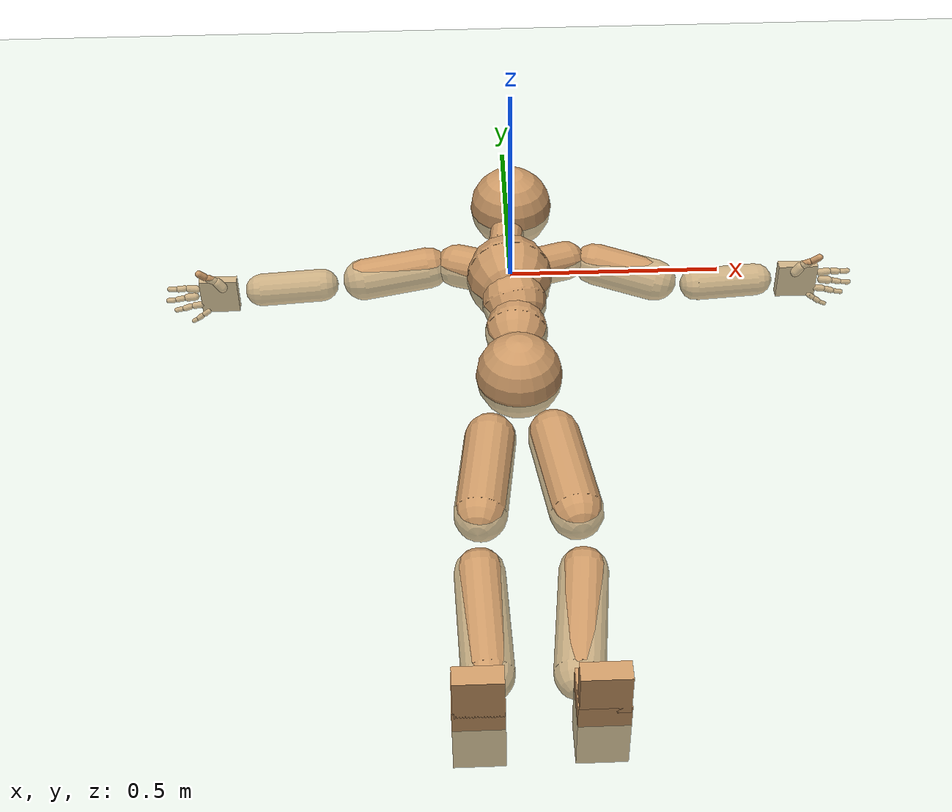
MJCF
<mujoco model="humanoid">
  <compiler coordinate="local"/>
  <default>
    <joint damping="0.0" armature="0.01" stiffness="0.0" limited="true"/>
    <geom conaffinity="1" condim="3" contype="7" margin="0.001" rgba="0.8 0.6 .4 1"/>
  </default>
  <asset>
    <texture type="skybox" builtin="gradient" rgb1=".4 .5 .6" rgb2="0 0 0" width="100" height="100"/>
    <texture builtin="flat" height="1278" mark="cross" markrgb="1 1 1" name="texgeom" random="0.01" rgb1="0.8 0.6 0.4" rgb2="0.8 0.6 0.4" type="cube" width="127"/>
    <texture builtin="checker" height="100" name="texplane" rgb1="0 0 0" rgb2="0.8 0.8 0.8" type="2d" width="100"/>
    <material name="MatPlane" reflectance="0.5" shininess="1" specular="1" texrepeat="60 60" texture="texplane"/>
    <material name="geom" texture="texgeom" texuniform="true"/>
  </asset>
  <worldbody>
    <light cutoff="100" diffuse="1 1 1" dir="-0 0 -1.3" directional="true" exponent="1" pos="0 0 1.3" specular=".1 .1 .1"/>
    <geom conaffinity="1" condim="3" name="floor" pos="0 0 0" rgba="0.8 0.9 0.8 1" size="100 100 .2" type="plane" material="MatPlane"/>
    <body name="Pelvis" pos="0.003 -0.3669 0.0052">
      <freejoint name="Pelvis"/>
      <geom type="sphere" contype="1" conaffinity="1" density="4629.6296296296305" size="0.0980" pos="0.0000 0.0000 0.0000" name="Pelvis"/>
      <body name="L_Hip" pos="0.0569 -0.094 -0.0248">
        <joint name="L_Hip_x" type="hinge" pos="0 0 0" axis="1 0 0" user="250 2.5 1 500 10 2" armature="0.01" range="-90.0000 90.0000" damping="0" stiffness="0"/>
        <joint name="L_Hip_y" type="hinge" pos="0 0 0" axis="0 1 0" user="250 2.5 1 500 10 2" armature="0.01" range="-90.0000 90.0000" damping="0" stiffness="0"/>
        <joint name="L_Hip_z" type="hinge" pos="0 0 0" axis="0 0 1" user="250 2.5 1 500 10 2" armature="0.01" range="-90.0000 90.0000" damping="0" stiffness="0"/>
        <geom type="capsule" contype="1" conaffinity="1" density="2040.816327" fromto="0.0112 -0.0747 -0.0017 0.0449 -0.2987 -0.0067" size="0.0578" name="L_Hip"/>
        <body name="L_Knee" pos="0.0561 -0.3734 -0.0084">
          <joint name="L_Knee_x" type="hinge" pos="0 0 0" axis="1 0 0" user="250 2.5 1 500 10 2" armature="0.01" range="-180.0000 180.0000" damping="0" stiffness="0"/>
          <joint name="L_Knee_y" type="hinge" pos="0 0 0" axis="0 1 0" user="250 2.5 1 500 10 2" armature="0.01" range="-5.6250 5.6250" damping="0" stiffness="0"/>
          <joint name="L_Knee_z" type="hinge" pos="0 0 0" axis="0 0 1" user="250 2.5 1 500 10 2" armature="0.01" range="-5.6250 5.6250" damping="0" stiffness="0"/>
          <geom type="capsule" contype="1" conaffinity="1" density="1234.567901" fromto="-0.0084 -0.0799 -0.0059 -0.0336 -0.3196 -0.0237" size="0.051" name="L_Knee"/>
          <body name="L_Ankle" pos="-0.042 -0.3995 -0.0296">
            <joint name="L_Ankle_x" type="hinge" pos="0 0 0" axis="1 0 0" user="150 2.5 1 500 10 2" armature="0.01" range="-90.0000 90.0000" damping="0" stiffness="0"/>
            <joint name="L_Ankle_y" type="hinge" pos="0 0 0" axis="0 1 0" user="150 2.5 1 500 10 2" armature="0.01" range="-90.0000 90.0000" damping="0" stiffness="0"/>
            <joint name="L_Ankle_z" type="hinge" pos="0 0 0" axis="0 0 1" user="150 2.5 1 500 10 2" armature="0.01" range="-90.0000 90.0000" damping="0" stiffness="0"/>
            <geom type="box" density="444.000502" pos="0.0404 -0.0291 0.0239" size="0.0495 0.0465 0.0848" quat="1.0000 0.0000 0.0000 0.0000" name="L_Ankle"/>
            <body name="L_Toe" pos="0.047 -0.0587 0.118">
              <joint name="L_Toe_x" type="hinge" pos="0 0 0" axis="1 0 0" user="150 1 1 500 1 1" armature="0.01" range="-90.0000 90.0000" damping="0" stiffness="0"/>
              <joint name="L_Toe_y" type="hinge" pos="0 0 0" axis="0 1 0" user="150 1 1 500 1 1" armature="0.01" range="-45.0000 45.0000" damping="0" stiffness="0"/>
              <joint name="L_Toe_z" type="hinge" pos="0 0 0" axis="0 0 1" user="150 1 1 500 1 1" armature="0.01" range="-45.0000 45.0000" damping="0" stiffness="0"/>
              <geom type="box" density="422.719813" pos="-0.0066 0.0035 0.0258" size="0.0476 0.0204 0.0496" quat="1.0000 0.0000 0.0000 0.0000" name="L_Toe"/>
            </body>
          </body>
        </body>
      </body>
      <body name="R_Hip" pos="-0.0618 -0.1053 -0.0203">
        <joint name="R_Hip_x" type="hinge" pos="0 0 0" axis="1 0 0" user="250 2.5 1 500 10 2" armature="0.01" range="-90.0000 90.0000" damping="0" stiffness="0"/>
        <joint name="R_Hip_y" type="hinge" pos="0 0 0" axis="0 1 0" user="250 2.5 1 500 10 2" armature="0.01" range="-90.0000 90.0000" damping="0" stiffness="0"/>
        <joint name="R_Hip_z" type="hinge" pos="0 0 0" axis="0 0 1" user="250 2.5 1 500 10 2" armature="0.01" range="-90.0000 90.0000" damping="0" stiffness="0"/>
        <geom type="capsule" contype="1" conaffinity="1" density="2040.816327" fromto="-0.0092 -0.0713 -0.0031 -0.0369 -0.2854 -0.0124" size="0.057" name="R_Hip"/>
        <body name="R_Knee" pos="-0.0461 -0.3567 -0.0155">
          <joint name="R_Knee_x" type="hinge" pos="0 0 0" axis="1 0 0" user="250 2.5 1 500 10 2" armature="0.01" range="-180.0000 180.0000" damping="0" stiffness="0"/>
          <joint name="R_Knee_y" type="hinge" pos="0 0 0" axis="0 1 0" user="250 2.5 1 500 10 2" armature="0.01" range="-5.6250 5.6250" damping="0" stiffness="0"/>
          <joint name="R_Knee_z" type="hinge" pos="0 0 0" axis="0 0 1" user="250 2.5 1 500 10 2" armature="0.01" range="-5.6250 5.6250" damping="0" stiffness="0"/>
          <geom type="capsule" contype="1" conaffinity="1" density="1234.567901" fromto="0.0030 -0.0815 -0.0036 0.0119 -0.3259 -0.0145" size="0.0526" name="R_Knee"/>
          <body name="R_Ankle" pos="0.0148 -0.4073 -0.0181">
            <joint name="R_Ankle_x" type="hinge" pos="0 0 0" axis="1 0 0" user="150 1 1 500 10 2" armature="0.01" range="-90.0000 90.0000" damping="0" stiffness="0"/>
            <joint name="R_Ankle_y" type="hinge" pos="0 0 0" axis="0 1 0" user="150 1 1 500 10 2" armature="0.01" range="-90.0000 90.0000" damping="0" stiffness="0"/>
            <joint name="R_Ankle_z" type="hinge" pos="0 0 0" axis="0 0 1" user="150 1 1 500 10 2" armature="0.01" range="-90.0000 90.0000" damping="0" stiffness="0"/>
            <geom type="box" density="443.99487" pos="-0.0243 -0.0266 0.0150" size="0.0495 0.0465 0.0848" quat="1.0000 0.0000 0.0000 0.0000" name="R_Ankle"/>
            <body name="R_Toe" pos="-0.0389 -0.059 0.119">
              <joint name="R_Toe_x" type="hinge" pos="0 0 0" axis="1 0 0" user="150 1 1 500 1 1" armature="0.01" range="-90.0000 90.0000" damping="0" stiffness="0"/>
              <joint name="R_Toe_y" type="hinge" pos="0 0 0" axis="0 1 0" user="150 1 1 500 1 1" armature="0.01" range="-45.0000 45.0000" damping="0" stiffness="0"/>
              <joint name="R_Toe_z" type="hinge" pos="0 0 0" axis="0 0 1" user="150 1 1 500 1 1" armature="0.01" range="-45.0000 45.0000" damping="0" stiffness="0"/>
              <geom type="box" density="422.722207" pos="0.0146 0.0063 0.0159" size="0.0476 0.0204 0.0496" quat="1.0000 0.0000 0.0000 0.0000" name="R_Toe"/>
            </body>
          </body>
        </body>
      </body>
      <body name="Torso" pos="-0.0024 0.1115 -0.0274">
        <joint name="Torso_x" type="hinge" pos="0 0 0" axis="1 0 0" user="500 5 1 500 10 2" armature="0.01" range="-60.0000 60.0000" damping="0" stiffness="0"/>
        <joint name="Torso_y" type="hinge" pos="0 0 0" axis="0 1 0" user="500 5 1 500 10 2" armature="0.01" range="-60.0000 60.0000" damping="0" stiffness="0"/>
        <joint name="Torso_z" type="hinge" pos="0 0 0" axis="0 0 1" user="500 5 1 500 10 2" armature="0.01" range="-60.0000 60.0000" damping="0" stiffness="0"/>
        <geom type="capsule" contype="1" conaffinity="1" density="2040.816327" fromto="0.0043 0.0622 -0.0017 0.0052 0.0760 -0.0021" size="0.0735" name="Torso"/>
        <body name="Spine" pos="0.0095 0.1382 -0.0038">
          <joint name="Spine_x" type="hinge" pos="0 0 0" axis="1 0 0" user="500 5 1 500 10 2" armature="0.01" range="-60.0000 60.0000" damping="0" stiffness="0"/>
          <joint name="Spine_y" type="hinge" pos="0 0 0" axis="0 1 0" user="500 5 1 500 10 2" armature="0.01" range="-60.0000 60.0000" damping="0" stiffness="0"/>
          <joint name="Spine_z" type="hinge" pos="0 0 0" axis="0 0 1" user="500 5 1 500 10 2" armature="0.01" range="-60.0000 60.0000" damping="0" stiffness="0"/>
          <geom type="capsule" contype="1" conaffinity="1" density="2040.816327" fromto="-0.0053 0.0245 0.0126 -0.0064 0.0299 0.0154" size="0.0772" name="Spine"/>
          <body name="Chest" pos="-0.0117 0.0544 0.028">
            <joint name="Chest_x" type="hinge" pos="0 0 0" axis="1 0 0" user="500 5 1 500 10 2" armature="0.01" range="-60.0000 60.0000" damping="0" stiffness="0"/>
            <joint name="Chest_y" type="hinge" pos="0 0 0" axis="0 1 0" user="500 5 1 500 10 2" armature="0.01" range="-60.0000 60.0000" damping="0" stiffness="0"/>
            <joint name="Chest_z" type="hinge" pos="0 0 0" axis="0 0 1" user="500 5 1 500 10 2" armature="0.01" range="-60.0000 60.0000" damping="0" stiffness="0"/>
            <geom type="capsule" contype="1" conaffinity="1" density="2040.816327" fromto="-0.0019 0.0514 -0.0073 -0.0024 0.0628 -0.0090" size="0.1029" name="Chest"/>
            <body name="Neck" pos="-0.0118 0.1694 -0.0291">
              <joint name="Neck_x" type="hinge" pos="0 0 0" axis="1 0 0" user="150 1 1 250 50 4" armature="0.01" range="-180.0000 180.0000" damping="0" stiffness="0"/>
              <joint name="Neck_y" type="hinge" pos="0 0 0" axis="0 1 0" user="150 1 1 250 50 4" armature="0.01" range="-180.0000 180.0000" damping="0" stiffness="0"/>
              <joint name="Neck_z" type="hinge" pos="0 0 0" axis="0 0 1" user="150 1 1 250 50 4" armature="0.01" range="-180.0000 180.0000" damping="0" stiffness="0"/>
              <geom type="capsule" contype="1" conaffinity="1" density="1000" fromto="0.0050 0.0330 0.0055 0.0199 0.1319 0.0219" size="0.0422" name="Neck"/>
              <body name="Head" pos="0.0248 0.1649 0.0274">
                <joint name="Head_x" type="hinge" pos="0 0 0" axis="1 0 0" user="150 1 1 250 50 4" armature="0.01" range="-90.0000 90.0000" damping="0" stiffness="0"/>
                <joint name="Head_y" type="hinge" pos="0 0 0" axis="0 1 0" user="150 1 1 250 50 4" armature="0.01" range="-90.0000 90.0000" damping="0" stiffness="0"/>
                <joint name="Head_z" type="hinge" pos="0 0 0" axis="0 0 1" user="150 1 1 250 50 4" armature="0.01" range="-90.0000 90.0000" damping="0" stiffness="0"/>
                <geom type="sphere" contype="1" conaffinity="1" density="1000" size="0.1018" pos="0.0000 0.0000 0.0000" name="Head"/>
              </body>
            </body>
            <body name="L_Thorax" pos="0.0459 0.087 -0.0067">
              <joint name="L_Thorax_x" type="hinge" pos="0 0 0" axis="1 0 0" user="200 2 1 500 50 4" armature="0.01" range="-180.0000 180.0000" damping="0" stiffness="0"/>
              <joint name="L_Thorax_y" type="hinge" pos="0 0 0" axis="0 1 0" user="200 2 1 500 50 4" armature="0.01" range="-180.0000 180.0000" damping="0" stiffness="0"/>
              <joint name="L_Thorax_z" type="hinge" pos="0 0 0" axis="0 0 1" user="200 2 1 500 50 4" armature="0.01" range="-180.0000 180.0000" damping="0" stiffness="0"/>
              <geom type="capsule" contype="1" conaffinity="1" density="1000" fromto="0.0230 0.0122 -0.0038 0.0921 0.0486 -0.0153" size="0.0477" name="L_Thorax"/>
              <body name="L_Shoulder" pos="0.1151 0.0608 -0.0192">
                <joint name="L_Shoulder_x" type="hinge" pos="0 0 0" axis="1 0 0" user="200 2 1 500 50 4" armature="0.01" range="-180.0000 180.0000" damping="0" stiffness="0"/>
                <joint name="L_Shoulder_y" type="hinge" pos="0 0 0" axis="0 1 0" user="200 2 1 500 50 4" armature="0.01" range="-180.0000 180.0000" damping="0" stiffness="0"/>
                <joint name="L_Shoulder_z" type="hinge" pos="0 0 0" axis="0 0 1" user="200 2 1 500 50 4" armature="0.01" range="-180.0000 180.0000" damping="0" stiffness="0"/>
                <geom type="capsule" contype="1" conaffinity="1" density="1000" fromto="0.0494 -0.0139 -0.0077 0.1976 -0.0558 -0.0308" size="0.0506" name="L_Shoulder"/>
                <body name="L_Elbow" pos="0.247 -0.0697 -0.0384">
                  <joint name="L_Elbow_x" type="hinge" pos="0 0 0" axis="1 0 0" user="150 1 1 150 10 2" armature="0.01" range="-720.0000 720.0000" damping="0" stiffness="0"/>
                  <joint name="L_Elbow_y" type="hinge" pos="0 0 0" axis="0 1 0" user="150 1 1 150 10 2" armature="0.01" range="-720.0000 720.0000" damping="0" stiffness="0"/>
                  <joint name="L_Elbow_z" type="hinge" pos="0 0 0" axis="0 0 1" user="150 1 1 150 10 2" armature="0.01" range="-720.0000 720.0000" damping="0" stiffness="0"/>
                  <geom type="capsule" contype="1" conaffinity="1" density="1000" fromto="0.0500 0.0047 -0.0005 0.1999 0.0188 -0.0020" size="0.0391" name="L_Elbow"/>
                  <body name="L_Wrist" pos="0.2499 0.0235 -0.0025">
                    <joint name="L_Wrist_x" type="hinge" pos="0 0 0" axis="1 0 0" user="100 1 1 150 1 1" armature="0.01" range="-180.0000 180.0000" damping="0" stiffness="0"/>
                    <joint name="L_Wrist_y" type="hinge" pos="0 0 0" axis="0 1 0" user="100 1 1 150 1 1" armature="0.01" range="-180.0000 180.0000" damping="0" stiffness="0"/>
                    <joint name="L_Wrist_z" type="hinge" pos="0 0 0" axis="0 0 1" user="100 1 1 150 1 1" armature="0.01" range="-180.0000 180.0000" damping="0" stiffness="0"/>
                    <geom type="box" density="1206.118532" pos="0.0522 -0.0013 -0.0029" size="0.0483 0.0121 0.0454" quat="1.0000 0.0000 0.0000 0.0000" name="L_Wrist"/>
                    <body name="L_Index1" pos="0.1017 -0.0086 0.0192">
                      <joint name="L_Index1_x" type="hinge" pos="0 0 0" axis="1 0 0" user="100 10 1 150" armature="0.01" range="-180.0000 180.0000" damping="0" stiffness="0"/>
                      <joint name="L_Index1_y" type="hinge" pos="0 0 0" axis="0 1 0" user="100 10 1 150" armature="0.01" range="-180.0000 180.0000" damping="0" stiffness="0"/>
                      <joint name="L_Index1_z" type="hinge" pos="0 0 0" axis="0 0 1" user="100 10 1 150" armature="0.01" range="-180.0000 180.0000" damping="0" stiffness="0"/>
                      <geom type="capsule" contype="1" conaffinity="1" density="1000" fromto="0.0064 0.0004 0.0006 0.0254 0.0017 0.0022" size="0.0091" name="L_Index1"/>
                      <body name="L_Index2" pos="0.0318 0.0022 0.0028">
                        <joint name="L_Index2_x" type="hinge" pos="0 0 0" axis="1 0 0" user="100 10 1 150" armature="0.01" range="-180.0000 180.0000" damping="0" stiffness="0"/>
                        <joint name="L_Index2_y" type="hinge" pos="0 0 0" axis="0 1 0" user="100 10 1 150" armature="0.01" range="-180.0000 180.0000" damping="0" stiffness="0"/>
                        <joint name="L_Index2_z" type="hinge" pos="0 0 0" axis="0 0 1" user="100 10 1 150" armature="0.01" range="-180.0000 180.0000" damping="0" stiffness="0"/>
                        <geom type="capsule" contype="1" conaffinity="1" density="1000" fromto="0.0045 -0.0005 -0.0000 0.0179 -0.0019 -0.0001" size="0.0076" name="L_Index2"/>
                        <body name="L_Index3" pos="0.0224 -0.0024 -0.0001">
                          <joint name="L_Index3_x" type="hinge" pos="0 0 0" axis="1 0 0" user="100 10 1 150" armature="0.01" range="-180.0000 180.0000" damping="0" stiffness="0"/>
                          <joint name="L_Index3_y" type="hinge" pos="0 0 0" axis="0 1 0" user="100 10 1 150" armature="0.01" range="-180.0000 180.0000" damping="0" stiffness="0"/>
                          <joint name="L_Index3_z" type="hinge" pos="0 0 0" axis="0 0 1" user="100 10 1 150" armature="0.01" range="-180.0000 180.0000" damping="0" stiffness="0"/>
                          <geom type="capsule" contype="1" conaffinity="1" density="1000" fromto="0.0049 -0.0001 0.0004 0.0195 -0.0003 0.0015" size="0.0064" name="L_Index3"/>
                        </body>
                      </body>
                    </body>
                    <body name="L_Middle1" pos="0.1092 -0.0063 -0.0039">
                      <joint name="L_Middle1_x" type="hinge" pos="0 0 0" axis="1 0 0" user="100 10 1 150" armature="0.01" range="-180.0000 180.0000" damping="0" stiffness="0"/>
                      <joint name="L_Middle1_y" type="hinge" pos="0 0 0" axis="0 1 0" user="100 10 1 150" armature="0.01" range="-180.0000 180.0000" damping="0" stiffness="0"/>
                      <joint name="L_Middle1_z" type="hinge" pos="0 0 0" axis="0 0 1" user="100 10 1 150" armature="0.01" range="-180.0000 180.0000" damping="0" stiffness="0"/>
                      <geom type="capsule" contype="1" conaffinity="1" density="1000" fromto="0.0061 0.0002 -0.0008 0.0244 0.0006 -0.0032" size="0.0094" name="L_Middle1"/>
                      <body name="L_Middle2" pos="0.0305 0.0008 -0.004">
                        <joint name="L_Middle2_x" type="hinge" pos="0 0 0" axis="1 0 0" user="100 10 1 150" armature="0.01" range="-180.0000 180.0000" damping="0" stiffness="0"/>
                        <joint name="L_Middle2_y" type="hinge" pos="0 0 0" axis="0 1 0" user="100 10 1 150" armature="0.01" range="-180.0000 180.0000" damping="0" stiffness="0"/>
                        <joint name="L_Middle2_z" type="hinge" pos="0 0 0" axis="0 0 1" user="100 10 1 150" armature="0.01" range="-180.0000 180.0000" damping="0" stiffness="0"/>
                        <geom type="capsule" contype="1" conaffinity="1" density="1000" fromto="0.0047 -0.0004 -0.0008 0.0187 -0.0016 -0.0033" size="0.007" name="L_Middle2"/>
                        <body name="L_Middle3" pos="0.0234 -0.002 -0.0042">
                          <joint name="L_Middle3_x" type="hinge" pos="0 0 0" axis="1 0 0" user="100 10 1 150" armature="0.01" range="-180.0000 180.0000" damping="0" stiffness="0"/>
                          <joint name="L_Middle3_y" type="hinge" pos="0 0 0" axis="0 1 0" user="100 10 1 150" armature="0.01" range="-180.0000 180.0000" damping="0" stiffness="0"/>
                          <joint name="L_Middle3_z" type="hinge" pos="0 0 0" axis="0 0 1" user="100 10 1 150" armature="0.01" range="-180.0000 180.0000" damping="0" stiffness="0"/>
                          <geom type="capsule" contype="1" conaffinity="1" density="1000" fromto="0.0051 0.0000 -0.0004 0.0203 0.0000 -0.0017" size="0.0061" name="L_Middle3"/>
                        </body>
                      </body>
                    </body>
                    <body name="L_Pinky1" pos="0.0842 -0.0143 -0.0431">
                      <joint name="L_Pinky1_x" type="hinge" pos="0 0 0" axis="1 0 0" user="100 10 1 150" armature="0.01" range="-180.0000 180.0000" damping="0" stiffness="0"/>
                      <joint name="L_Pinky1_y" type="hinge" pos="0 0 0" axis="0 1 0" user="100 10 1 150" armature="0.01" range="-180.0000 180.0000" damping="0" stiffness="0"/>
                      <joint name="L_Pinky1_z" type="hinge" pos="0 0 0" axis="0 0 1" user="100 10 1 150" armature="0.01" range="-180.0000 180.0000" damping="0" stiffness="0"/>
                      <geom type="capsule" contype="1" conaffinity="1" density="1000" fromto="0.0031 -0.0002 -0.0024 0.0125 -0.0009 -0.0094" size="0.0067" name="L_Pinky1"/>
                      <body name="L_Pinky2" pos="0.0156 -0.0011 -0.0118">
                        <joint name="L_Pinky2_x" type="hinge" pos="0 0 0" axis="1 0 0" user="100 10 1 150" armature="0.01" range="-180.0000 180.0000" damping="0" stiffness="0"/>
                        <joint name="L_Pinky2_y" type="hinge" pos="0 0 0" axis="0 1 0" user="100 10 1 150" armature="0.01" range="-180.0000 180.0000" damping="0" stiffness="0"/>
                        <joint name="L_Pinky2_z" type="hinge" pos="0 0 0" axis="0 0 1" user="100 10 1 150" armature="0.01" range="-180.0000 180.0000" damping="0" stiffness="0"/>
                        <geom type="capsule" contype="1" conaffinity="1" density="1000" fromto="0.0031 -0.0003 -0.0022 0.0125 -0.0013 -0.0088" size="0.0065" name="L_Pinky2"/>
                        <body name="L_Pinky3" pos="0.0156 -0.0017 -0.0111">
                          <joint name="L_Pinky3_x" type="hinge" pos="0 0 0" axis="1 0 0" user="100 10 1 150" armature="0.01" range="-180.0000 180.0000" damping="0" stiffness="0"/>
                          <joint name="L_Pinky3_y" type="hinge" pos="0 0 0" axis="0 1 0" user="100 10 1 150" armature="0.01" range="-180.0000 180.0000" damping="0" stiffness="0"/>
                          <joint name="L_Pinky3_z" type="hinge" pos="0 0 0" axis="0 0 1" user="100 10 1 150" armature="0.01" range="-180.0000 180.0000" damping="0" stiffness="0"/>
                          <geom type="capsule" contype="1" conaffinity="1" density="1000" fromto="0.0035 0.0001 -0.0018 0.0141 0.0003 -0.0072" size="0.0049" name="L_Pinky3"/>
                        </body>
                      </body>
                    </body>
                    <body name="L_Ring1" pos="0.0975 -0.0091 -0.0269">
                      <joint name="L_Ring1_x" type="hinge" pos="0 0 0" axis="1 0 0" user="100 10 1 150" armature="0.01" range="-180.0000 180.0000" damping="0" stiffness="0"/>
                      <joint name="L_Ring1_y" type="hinge" pos="0 0 0" axis="0 1 0" user="100 10 1 150" armature="0.01" range="-180.0000 180.0000" damping="0" stiffness="0"/>
                      <joint name="L_Ring1_z" type="hinge" pos="0 0 0" axis="0 0 1" user="100 10 1 150" armature="0.01" range="-180.0000 180.0000" damping="0" stiffness="0"/>
                      <geom type="capsule" contype="1" conaffinity="1" density="1000" fromto="0.0056 0.0003 -0.0010 0.0224 0.0012 -0.0042" size="0.0079" name="L_Ring1"/>
                      <body name="L_Ring2" pos="0.028 0.0014 -0.0052">
                        <joint name="L_Ring2_x" type="hinge" pos="0 0 0" axis="1 0 0" user="100 10 1 150" armature="0.01" range="-180.0000 180.0000" damping="0" stiffness="0"/>
                        <joint name="L_Ring2_y" type="hinge" pos="0 0 0" axis="0 1 0" user="100 10 1 150" armature="0.01" range="-180.0000 180.0000" damping="0" stiffness="0"/>
                        <joint name="L_Ring2_z" type="hinge" pos="0 0 0" axis="0 0 1" user="100 10 1 150" armature="0.01" range="-180.0000 180.0000" damping="0" stiffness="0"/>
                        <geom type="capsule" contype="1" conaffinity="1" density="1000" fromto="0.0045 -0.0003 -0.0014 0.0182 -0.0012 -0.0057" size="0.0074" name="L_Ring2"/>
                        <body name="L_Ring3" pos="0.0227 -0.0015 -0.0071">
                          <joint name="L_Ring3_x" type="hinge" pos="0 0 0" axis="1 0 0" user="100 10 1 150" armature="0.01" range="-180.0000 180.0000" damping="0" stiffness="0"/>
                          <joint name="L_Ring3_y" type="hinge" pos="0 0 0" axis="0 1 0" user="100 10 1 150" armature="0.01" range="-180.0000 180.0000" damping="0" stiffness="0"/>
                          <joint name="L_Ring3_z" type="hinge" pos="0 0 0" axis="0 0 1" user="100 10 1 150" armature="0.01" range="-180.0000 180.0000" damping="0" stiffness="0"/>
                          <geom type="capsule" contype="1" conaffinity="1" density="1000" fromto="0.0049 0.0001 -0.0010 0.0198 0.0004 -0.0041" size="0.0057" name="L_Ring3"/>
                        </body>
                      </body>
                    </body>
                    <body name="L_Thumb1" pos="0.0407 -0.0179 0.0254">
                      <joint name="L_Thumb1_x" type="hinge" pos="0 0 0" axis="1 0 0" user="100 10 1 150" armature="0.01" range="-180.0000 180.0000" damping="0" stiffness="0"/>
                      <joint name="L_Thumb1_y" type="hinge" pos="0 0 0" axis="0 1 0" user="100 10 1 150" armature="0.01" range="-180.0000 180.0000" damping="0" stiffness="0"/>
                      <joint name="L_Thumb1_z" type="hinge" pos="0 0 0" axis="0 0 1" user="100 10 1 150" armature="0.01" range="-180.0000 180.0000" damping="0" stiffness="0"/>
                      <geom type="capsule" contype="1" conaffinity="1" density="1000" fromto="0.0034 0.0002 0.0049 0.0137 0.0008 0.0197" size="0.012" name="L_Thumb1"/>
                      <body name="L_Thumb2" pos="0.0172 0.001 0.0247">
                        <joint name="L_Thumb2_x" type="hinge" pos="0 0 0" axis="1 0 0" user="100 10 1 150" armature="0.01" range="-180.0000 180.0000" damping="0" stiffness="0"/>
                        <joint name="L_Thumb2_y" type="hinge" pos="0 0 0" axis="0 1 0" user="100 10 1 150" armature="0.01" range="-180.0000 180.0000" damping="0" stiffness="0"/>
                        <joint name="L_Thumb2_z" type="hinge" pos="0 0 0" axis="0 0 1" user="100 10 1 150" armature="0.01" range="-180.0000 180.0000" damping="0" stiffness="0"/>
                        <geom type="capsule" contype="1" conaffinity="1" density="1000" fromto="0.0042 -0.0010 0.0030 0.0166 -0.0040 0.0122" size="0.0094" name="L_Thumb2"/>
                        <body name="L_Thumb3" pos="0.0208 -0.005 0.0152">
                          <joint name="L_Thumb3_x" type="hinge" pos="0 0 0" axis="1 0 0" user="100 10 1 150" armature="0.01" range="-180.0000 180.0000" damping="0" stiffness="0"/>
                          <joint name="L_Thumb3_y" type="hinge" pos="0 0 0" axis="0 1 0" user="100 10 1 150" armature="0.01" range="-180.0000 180.0000" damping="0" stiffness="0"/>
                          <joint name="L_Thumb3_z" type="hinge" pos="0 0 0" axis="0 0 1" user="100 10 1 150" armature="0.01" range="-180.0000 180.0000" damping="0" stiffness="0"/>
                          <geom type="capsule" contype="1" conaffinity="1" density="1000" fromto="0.0046 -0.0006 0.0034 0.0182 -0.0024 0.0138" size="0.0086" name="L_Thumb3"/>
                        </body>
                      </body>
                    </body>
                  </body>
                </body>
              </body>
            </body>
            <body name="R_Thorax" pos="-0.0469 0.0863 -0.0132">
              <joint name="R_Thorax_x" type="hinge" pos="0 0 0" axis="1 0 0" user="200 2 1 150 10 2" armature="0.01" range="-180.0000 180.0000" damping="0" stiffness="0"/>
              <joint name="R_Thorax_y" type="hinge" pos="0 0 0" axis="0 1 0" user="200 2 1 150 10 2" armature="0.01" range="-180.0000 180.0000" damping="0" stiffness="0"/>
              <joint name="R_Thorax_z" type="hinge" pos="0 0 0" axis="0 0 1" user="200 2 1 150 10 2" armature="0.01" range="-180.0000 180.0000" damping="0" stiffness="0"/>
              <geom type="capsule" contype="1" conaffinity="1" density="1000" fromto="-0.0198 0.0112 -0.0030 -0.0794 0.0446 -0.0121" size="0.0526" name="R_Thorax"/>
              <body name="R_Shoulder" pos="-0.0992 0.0558 -0.0152">
                <joint name="R_Shoulder_x" type="hinge" pos="0 0 0" axis="1 0 0" user="200 2 1 250 10 2" armature="0.01" range="-180.0000 180.0000" damping="0" stiffness="0"/>
                <joint name="R_Shoulder_y" type="hinge" pos="0 0 0" axis="0 1 0" user="200 2 1 250 10 2" armature="0.01" range="-180.0000 180.0000" damping="0" stiffness="0"/>
                <joint name="R_Shoulder_z" type="hinge" pos="0 0 0" axis="0 0 1" user="200 2 1 250 10 2" armature="0.01" range="-180.0000 180.0000" damping="0" stiffness="0"/>
                <geom type="capsule" contype="1" conaffinity="1" density="1000" fromto="-0.0526 -0.0068 -0.0048 -0.2106 -0.0273 -0.0192" size="0.0506" name="R_Shoulder"/>
                <body name="R_Elbow" pos="-0.2632 -0.0341 -0.024">
                  <joint name="R_Elbow_x" type="hinge" pos="0 0 0" axis="1 0 0" user="150 1 1 150 10 2" armature="0.01" range="-720.0000 720.0000" damping="0" stiffness="0"/>
                  <joint name="R_Elbow_y" type="hinge" pos="0 0 0" axis="0 1 0" user="150 1 1 150 10 2" armature="0.01" range="-720.0000 720.0000" damping="0" stiffness="0"/>
                  <joint name="R_Elbow_z" type="hinge" pos="0 0 0" axis="0 0 1" user="150 1 1 150 10 2" armature="0.01" range="-720.0000 720.0000" damping="0" stiffness="0"/>
                  <geom type="capsule" contype="1" conaffinity="1" density="1000" fromto="-0.0495 -0.0007 -0.0030 -0.1978 -0.0026 -0.0118" size="0.0394" name="R_Elbow"/>
                  <body name="R_Wrist" pos="-0.2473 -0.0033 -0.0148">
                    <joint name="R_Wrist_x" type="hinge" pos="0 0 0" axis="1 0 0" user="100 1 1 150 1 1" armature="0.01" range="-180.0000 180.0000" damping="0" stiffness="0"/>
                    <joint name="R_Wrist_y" type="hinge" pos="0 0 0" axis="0 1 0" user="100 1 1 150 1 1" armature="0.01" range="-180.0000 180.0000" damping="0" stiffness="0"/>
                    <joint name="R_Wrist_z" type="hinge" pos="0 0 0" axis="0 0 1" user="100 1 1 150 1 1" armature="0.01" range="-180.0000 180.0000" damping="0" stiffness="0"/>
                    <geom type="box" density="1236.645714" pos="-0.0535 -0.0045 -0.0026" size="0.0454 0.0121 0.0454" quat="1.0000 0.0000 0.0000 0.0000" name="R_Wrist"/>
                    <body name="R_Index1" pos="-0.0996 -0.0118 0.0195">
                      <joint name="R_Index1_x" type="hinge" pos="0 0 0" axis="1 0 0" user="100 10 1 150" armature="0.01" range="-180.0000 180.0000" damping="0" stiffness="0"/>
                      <joint name="R_Index1_y" type="hinge" pos="0 0 0" axis="0 1 0" user="100 10 1 150" armature="0.01" range="-180.0000 180.0000" damping="0" stiffness="0"/>
                      <joint name="R_Index1_z" type="hinge" pos="0 0 0" axis="0 0 1" user="100 10 1 150" armature="0.01" range="-180.0000 180.0000" damping="0" stiffness="0"/>
                      <geom type="capsule" contype="1" conaffinity="1" density="1000" fromto="-0.0064 0.0004 0.0006 -0.0254 0.0017 0.0022" size="0.0091" name="R_Index1"/>
                      <body name="R_Index2" pos="-0.0318 0.0022 0.0028">
                        <joint name="R_Index2_x" type="hinge" pos="0 0 0" axis="1 0 0" user="100 10 1 150" armature="0.01" range="-180.0000 180.0000" damping="0" stiffness="0"/>
                        <joint name="R_Index2_y" type="hinge" pos="0 0 0" axis="0 1 0" user="100 10 1 150" armature="0.01" range="-180.0000 180.0000" damping="0" stiffness="0"/>
                        <joint name="R_Index2_z" type="hinge" pos="0 0 0" axis="0 0 1" user="100 10 1 150" armature="0.01" range="-180.0000 180.0000" damping="0" stiffness="0"/>
                        <geom type="capsule" contype="1" conaffinity="1" density="1000" fromto="-0.0045 -0.0005 -0.0000 -0.0179 -0.0019 -0.0001" size="0.0076" name="R_Index2"/>
                        <body name="R_Index3" pos="-0.0224 -0.0024 -0.0001">
                          <joint name="R_Index3_x" type="hinge" pos="0 0 0" axis="1 0 0" user="100 10 1 150" armature="0.01" range="-180.0000 180.0000" damping="0" stiffness="0"/>
                          <joint name="R_Index3_y" type="hinge" pos="0 0 0" axis="0 1 0" user="100 10 1 150" armature="0.01" range="-180.0000 180.0000" damping="0" stiffness="0"/>
                          <joint name="R_Index3_z" type="hinge" pos="0 0 0" axis="0 0 1" user="100 10 1 150" armature="0.01" range="-180.0000 180.0000" damping="0" stiffness="0"/>
                          <geom type="capsule" contype="1" conaffinity="1" density="1000" fromto="-0.0041 -0.0001 0.0004 -0.0163 -0.0003 0.0015" size="0.0067" name="R_Index3"/>
                        </body>
                      </body>
                    </body>
                    <body name="R_Middle1" pos="-0.1072 -0.0095 -0.0036">
                      <joint name="R_Middle1_x" type="hinge" pos="0 0 0" axis="1 0 0" user="100 10 1 150" armature="0.01" range="-180.0000 180.0000" damping="0" stiffness="0"/>
                      <joint name="R_Middle1_y" type="hinge" pos="0 0 0" axis="0 1 0" user="100 10 1 150" armature="0.01" range="-180.0000 180.0000" damping="0" stiffness="0"/>
                      <joint name="R_Middle1_z" type="hinge" pos="0 0 0" axis="0 0 1" user="100 10 1 150" armature="0.01" range="-180.0000 180.0000" damping="0" stiffness="0"/>
                      <geom type="capsule" contype="1" conaffinity="1" density="1000" fromto="-0.0061 0.0002 -0.0008 -0.0244 0.0006 -0.0032" size="0.0094" name="R_Middle1"/>
                      <body name="R_Middle2" pos="-0.0305 0.0008 -0.0041">
                        <joint name="R_Middle2_x" type="hinge" pos="0 0 0" axis="1 0 0" user="100 10 1 150" armature="0.01" range="-180.0000 180.0000" damping="0" stiffness="0"/>
                        <joint name="R_Middle2_y" type="hinge" pos="0 0 0" axis="0 1 0" user="100 10 1 150" armature="0.01" range="-180.0000 180.0000" damping="0" stiffness="0"/>
                        <joint name="R_Middle2_z" type="hinge" pos="0 0 0" axis="0 0 1" user="100 10 1 150" armature="0.01" range="-180.0000 180.0000" damping="0" stiffness="0"/>
                        <geom type="capsule" contype="1" conaffinity="1" density="1000" fromto="-0.0047 -0.0004 -0.0008 -0.0187 -0.0016 -0.0033" size="0.007" name="R_Middle2"/>
                        <body name="R_Middle3" pos="-0.0234 -0.002 -0.0042">
                          <joint name="R_Middle3_x" type="hinge" pos="0 0 0" axis="1 0 0" user="100 10 1 150" armature="0.01" range="-180.0000 180.0000" damping="0" stiffness="0"/>
                          <joint name="R_Middle3_y" type="hinge" pos="0 0 0" axis="0 1 0" user="100 10 1 150" armature="0.01" range="-180.0000 180.0000" damping="0" stiffness="0"/>
                          <joint name="R_Middle3_z" type="hinge" pos="0 0 0" axis="0 0 1" user="100 10 1 150" armature="0.01" range="-180.0000 180.0000" damping="0" stiffness="0"/>
                          <geom type="capsule" contype="1" conaffinity="1" density="1000" fromto="-0.0043 0.0000 -0.0004 -0.0171 0.0000 -0.0017" size="0.0064" name="R_Middle3"/>
                        </body>
                      </body>
                    </body>
                    <body name="R_Pinky1" pos="-0.0822 -0.0175 -0.0428">
                      <joint name="R_Pinky1_x" type="hinge" pos="0 0 0" axis="1 0 0" user="100 10 1 150" armature="0.01" range="-180.0000 180.0000" damping="0" stiffness="0"/>
                      <joint name="R_Pinky1_y" type="hinge" pos="0 0 0" axis="0 1 0" user="100 10 1 150" armature="0.01" range="-180.0000 180.0000" damping="0" stiffness="0"/>
                      <joint name="R_Pinky1_z" type="hinge" pos="0 0 0" axis="0 0 1" user="100 10 1 150" armature="0.01" range="-180.0000 180.0000" damping="0" stiffness="0"/>
                      <geom type="capsule" contype="1" conaffinity="1" density="1000" fromto="-0.0031 -0.0002 -0.0024 -0.0125 -0.0009 -0.0094" size="0.0067" name="R_Pinky1"/>
                      <body name="R_Pinky2" pos="-0.0156 -0.0011 -0.0118">
                        <joint name="R_Pinky2_x" type="hinge" pos="0 0 0" axis="1 0 0" user="100 10 1 150" armature="0.01" range="-180.0000 180.0000" damping="0" stiffness="0"/>
                        <joint name="R_Pinky2_y" type="hinge" pos="0 0 0" axis="0 1 0" user="100 10 1 150" armature="0.01" range="-180.0000 180.0000" damping="0" stiffness="0"/>
                        <joint name="R_Pinky2_z" type="hinge" pos="0 0 0" axis="0 0 1" user="100 10 1 150" armature="0.01" range="-180.0000 180.0000" damping="0" stiffness="0"/>
                        <geom type="capsule" contype="1" conaffinity="1" density="1000" fromto="-0.0031 -0.0003 -0.0022 -0.0125 -0.0013 -0.0088" size="0.0065" name="R_Pinky2"/>
                        <body name="R_Pinky3" pos="-0.0156 -0.0017 -0.0111">
                          <joint name="R_Pinky3_x" type="hinge" pos="0 0 0" axis="1 0 0" user="100 10 1 150" armature="0.01" range="-180.0000 180.0000" damping="0" stiffness="0"/>
                          <joint name="R_Pinky3_y" type="hinge" pos="0 0 0" axis="0 1 0" user="100 10 1 150" armature="0.01" range="-180.0000 180.0000" damping="0" stiffness="0"/>
                          <joint name="R_Pinky3_z" type="hinge" pos="0 0 0" axis="0 0 1" user="100 10 1 150" armature="0.01" range="-180.0000 180.0000" damping="0" stiffness="0"/>
                          <geom type="capsule" contype="1" conaffinity="1" density="1000" fromto="-0.0027 0.0001 -0.0018 -0.0109 0.0003 -0.0072" size="0.0052" name="R_Pinky3"/>
                        </body>
                      </body>
                    </body>
                    <body name="R_Ring1" pos="-0.0955 -0.0123 -0.0266">
                      <joint name="R_Ring1_x" type="hinge" pos="0 0 0" axis="1 0 0" user="100 10 1 150" armature="0.01" range="-180.0000 180.0000" damping="0" stiffness="0"/>
                      <joint name="R_Ring1_y" type="hinge" pos="0 0 0" axis="0 1 0" user="100 10 1 150" armature="0.01" range="-180.0000 180.0000" damping="0" stiffness="0"/>
                      <joint name="R_Ring1_z" type="hinge" pos="0 0 0" axis="0 0 1" user="100 10 1 150" armature="0.01" range="-180.0000 180.0000" damping="0" stiffness="0"/>
                      <geom type="capsule" contype="1" conaffinity="1" density="1000" fromto="-0.0056 0.0003 -0.0010 -0.0224 0.0012 -0.0042" size="0.0079" name="R_Ring1"/>
                      <body name="R_Ring2" pos="-0.028 0.0014 -0.0052">
                        <joint name="R_Ring2_x" type="hinge" pos="0 0 0" axis="1 0 0" user="100 10 1 150" armature="0.01" range="-180.0000 180.0000" damping="0" stiffness="0"/>
                        <joint name="R_Ring2_y" type="hinge" pos="0 0 0" axis="0 1 0" user="100 10 1 150" armature="0.01" range="-180.0000 180.0000" damping="0" stiffness="0"/>
                        <joint name="R_Ring2_z" type="hinge" pos="0 0 0" axis="0 0 1" user="100 10 1 150" armature="0.01" range="-180.0000 180.0000" damping="0" stiffness="0"/>
                        <geom type="capsule" contype="1" conaffinity="1" density="1000" fromto="-0.0045 -0.0003 -0.0014 -0.0182 -0.0012 -0.0057" size="0.0074" name="R_Ring2"/>
                        <body name="R_Ring3" pos="-0.0227 -0.0015 -0.0071">
                          <joint name="R_Ring3_x" type="hinge" pos="0 0 0" axis="1 0 0" user="100 10 1 150" armature="0.01" range="-180.0000 180.0000" damping="0" stiffness="0"/>
                          <joint name="R_Ring3_y" type="hinge" pos="0 0 0" axis="0 1 0" user="100 10 1 150" armature="0.01" range="-180.0000 180.0000" damping="0" stiffness="0"/>
                          <joint name="R_Ring3_z" type="hinge" pos="0 0 0" axis="0 0 1" user="100 10 1 150" armature="0.01" range="-180.0000 180.0000" damping="0" stiffness="0"/>
                          <geom type="capsule" contype="1" conaffinity="1" density="1000" fromto="-0.0041 0.0001 -0.0010 -0.0166 0.0004 -0.0041" size="0.006" name="R_Ring3"/>
                        </body>
                      </body>
                    </body>
                    <body name="R_Thumb1" pos="-0.0387 -0.0211 0.0257">
                      <joint name="R_Thumb1_x" type="hinge" pos="0 0 0" axis="1 0 0" user="100 10 1 150" armature="0.01" range="-180.0000 180.0000" damping="0" stiffness="0"/>
                      <joint name="R_Thumb1_y" type="hinge" pos="0 0 0" axis="0 1 0" user="100 10 1 150" armature="0.01" range="-180.0000 180.0000" damping="0" stiffness="0"/>
                      <joint name="R_Thumb1_z" type="hinge" pos="0 0 0" axis="0 0 1" user="100 10 1 150" armature="0.01" range="-180.0000 180.0000" damping="0" stiffness="0"/>
                      <geom type="capsule" contype="1" conaffinity="1" density="1000" fromto="-0.0034 0.0002 0.0049 -0.0137 0.0008 0.0197" size="0.012" name="R_Thumb1"/>
                      <body name="R_Thumb2" pos="-0.0172 0.001 0.0247">
                        <joint name="R_Thumb2_x" type="hinge" pos="0 0 0" axis="1 0 0" user="100 10 1 150" armature="0.01" range="-180.0000 180.0000" damping="0" stiffness="0"/>
                        <joint name="R_Thumb2_y" type="hinge" pos="0 0 0" axis="0 1 0" user="100 10 1 150" armature="0.01" range="-180.0000 180.0000" damping="0" stiffness="0"/>
                        <joint name="R_Thumb2_z" type="hinge" pos="0 0 0" axis="0 0 1" user="100 10 1 150" armature="0.01" range="-180.0000 180.0000" damping="0" stiffness="0"/>
                        <geom type="capsule" contype="1" conaffinity="1" density="1000" fromto="-0.0042 -0.0010 0.0030 -0.0166 -0.0040 0.0122" size="0.0094" name="R_Thumb2"/>
                        <body name="R_Thumb3" pos="-0.0208 -0.005 0.0152">
                          <joint name="R_Thumb3_x" type="hinge" pos="0 0 0" axis="1 0 0" user="100 10 1 150" armature="0.01" range="-180.0000 180.0000" damping="0" stiffness="0"/>
                          <joint name="R_Thumb3_y" type="hinge" pos="0 0 0" axis="0 1 0" user="100 10 1 150" armature="0.01" range="-180.0000 180.0000" damping="0" stiffness="0"/>
                          <joint name="R_Thumb3_z" type="hinge" pos="0 0 0" axis="0 0 1" user="100 10 1 150" armature="0.01" range="-180.0000 180.0000" damping="0" stiffness="0"/>
                          <geom type="capsule" contype="1" conaffinity="1" density="1000" fromto="-0.0038 -0.0006 0.0034 -0.0150 -0.0024 0.0138" size="0.0089" name="R_Thumb3"/>
                        </body>
                      </body>
                    </body>
                  </body>
                </body>
              </body>
            </body>
          </body>
        </body>
      </body>
    </body>
  </worldbody>
  <actuator>
    <motor name="L_Hip_x" joint="L_Hip_x" gear="1"/>
    <motor name="L_Hip_y" joint="L_Hip_y" gear="1"/>
    <motor name="L_Hip_z" joint="L_Hip_z" gear="1"/>
    <motor name="L_Knee_x" joint="L_Knee_x" gear="1"/>
    <motor name="L_Knee_y" joint="L_Knee_y" gear="1"/>
    <motor name="L_Knee_z" joint="L_Knee_z" gear="1"/>
    <motor name="L_Ankle_x" joint="L_Ankle_x" gear="1"/>
    <motor name="L_Ankle_y" joint="L_Ankle_y" gear="1"/>
    <motor name="L_Ankle_z" joint="L_Ankle_z" gear="1"/>
    <motor name="L_Toe_x" joint="L_Toe_x" gear="1"/>
    <motor name="L_Toe_y" joint="L_Toe_y" gear="1"/>
    <motor name="L_Toe_z" joint="L_Toe_z" gear="1"/>
    <motor name="R_Hip_x" joint="R_Hip_x" gear="1"/>
    <motor name="R_Hip_y" joint="R_Hip_y" gear="1"/>
    <motor name="R_Hip_z" joint="R_Hip_z" gear="1"/>
    <motor name="R_Knee_x" joint="R_Knee_x" gear="1"/>
    <motor name="R_Knee_y" joint="R_Knee_y" gear="1"/>
    <motor name="R_Knee_z" joint="R_Knee_z" gear="1"/>
    <motor name="R_Ankle_x" joint="R_Ankle_x" gear="1"/>
    <motor name="R_Ankle_y" joint="R_Ankle_y" gear="1"/>
    <motor name="R_Ankle_z" joint="R_Ankle_z" gear="1"/>
    <motor name="R_Toe_x" joint="R_Toe_x" gear="1"/>
    <motor name="R_Toe_y" joint="R_Toe_y" gear="1"/>
    <motor name="R_Toe_z" joint="R_Toe_z" gear="1"/>
    <motor name="Torso_x" joint="Torso_x" gear="1"/>
    <motor name="Torso_y" joint="Torso_y" gear="1"/>
    <motor name="Torso_z" joint="Torso_z" gear="1"/>
    <motor name="Spine_x" joint="Spine_x" gear="1"/>
    <motor name="Spine_y" joint="Spine_y" gear="1"/>
    <motor name="Spine_z" joint="Spine_z" gear="1"/>
    <motor name="Chest_x" joint="Chest_x" gear="1"/>
    <motor name="Chest_y" joint="Chest_y" gear="1"/>
    <motor name="Chest_z" joint="Chest_z" gear="1"/>
    <motor name="Neck_x" joint="Neck_x" gear="1"/>
    <motor name="Neck_y" joint="Neck_y" gear="1"/>
    <motor name="Neck_z" joint="Neck_z" gear="1"/>
    <motor name="Head_x" joint="Head_x" gear="1"/>
    <motor name="Head_y" joint="Head_y" gear="1"/>
    <motor name="Head_z" joint="Head_z" gear="1"/>
    <motor name="L_Thorax_x" joint="L_Thorax_x" gear="1"/>
    <motor name="L_Thorax_y" joint="L_Thorax_y" gear="1"/>
    <motor name="L_Thorax_z" joint="L_Thorax_z" gear="1"/>
    <motor name="L_Shoulder_x" joint="L_Shoulder_x" gear="1"/>
    <motor name="L_Shoulder_y" joint="L_Shoulder_y" gear="1"/>
    <motor name="L_Shoulder_z" joint="L_Shoulder_z" gear="1"/>
    <motor name="L_Elbow_x" joint="L_Elbow_x" gear="1"/>
    <motor name="L_Elbow_y" joint="L_Elbow_y" gear="1"/>
    <motor name="L_Elbow_z" joint="L_Elbow_z" gear="1"/>
    <motor name="L_Wrist_x" joint="L_Wrist_x" gear="1"/>
    <motor name="L_Wrist_y" joint="L_Wrist_y" gear="1"/>
    <motor name="L_Wrist_z" joint="L_Wrist_z" gear="1"/>
    <motor name="L_Index1_x" joint="L_Index1_x" gear="1"/>
    <motor name="L_Index1_y" joint="L_Index1_y" gear="1"/>
    <motor name="L_Index1_z" joint="L_Index1_z" gear="1"/>
    <motor name="L_Index2_x" joint="L_Index2_x" gear="1"/>
    <motor name="L_Index2_y" joint="L_Index2_y" gear="1"/>
    <motor name="L_Index2_z" joint="L_Index2_z" gear="1"/>
    <motor name="L_Index3_x" joint="L_Index3_x" gear="1"/>
    <motor name="L_Index3_y" joint="L_Index3_y" gear="1"/>
    <motor name="L_Index3_z" joint="L_Index3_z" gear="1"/>
    <motor name="L_Middle1_x" joint="L_Middle1_x" gear="1"/>
    <motor name="L_Middle1_y" joint="L_Middle1_y" gear="1"/>
    <motor name="L_Middle1_z" joint="L_Middle1_z" gear="1"/>
    <motor name="L_Middle2_x" joint="L_Middle2_x" gear="1"/>
    <motor name="L_Middle2_y" joint="L_Middle2_y" gear="1"/>
    <motor name="L_Middle2_z" joint="L_Middle2_z" gear="1"/>
    <motor name="L_Middle3_x" joint="L_Middle3_x" gear="1"/>
    <motor name="L_Middle3_y" joint="L_Middle3_y" gear="1"/>
    <motor name="L_Middle3_z" joint="L_Middle3_z" gear="1"/>
    <motor name="L_Pinky1_x" joint="L_Pinky1_x" gear="1"/>
    <motor name="L_Pinky1_y" joint="L_Pinky1_y" gear="1"/>
    <motor name="L_Pinky1_z" joint="L_Pinky1_z" gear="1"/>
    <motor name="L_Pinky2_x" joint="L_Pinky2_x" gear="1"/>
    <motor name="L_Pinky2_y" joint="L_Pinky2_y" gear="1"/>
    <motor name="L_Pinky2_z" joint="L_Pinky2_z" gear="1"/>
    <motor name="L_Pinky3_x" joint="L_Pinky3_x" gear="1"/>
    <motor name="L_Pinky3_y" joint="L_Pinky3_y" gear="1"/>
    <motor name="L_Pinky3_z" joint="L_Pinky3_z" gear="1"/>
    <motor name="L_Ring1_x" joint="L_Ring1_x" gear="1"/>
    <motor name="L_Ring1_y" joint="L_Ring1_y" gear="1"/>
    <motor name="L_Ring1_z" joint="L_Ring1_z" gear="1"/>
    <motor name="L_Ring2_x" joint="L_Ring2_x" gear="1"/>
    <motor name="L_Ring2_y" joint="L_Ring2_y" gear="1"/>
    <motor name="L_Ring2_z" joint="L_Ring2_z" gear="1"/>
    <motor name="L_Ring3_x" joint="L_Ring3_x" gear="1"/>
    <motor name="L_Ring3_y" joint="L_Ring3_y" gear="1"/>
    <motor name="L_Ring3_z" joint="L_Ring3_z" gear="1"/>
    <motor name="L_Thumb1_x" joint="L_Thumb1_x" gear="1"/>
    <motor name="L_Thumb1_y" joint="L_Thumb1_y" gear="1"/>
    <motor name="L_Thumb1_z" joint="L_Thumb1_z" gear="1"/>
    <motor name="L_Thumb2_x" joint="L_Thumb2_x" gear="1"/>
    <motor name="L_Thumb2_y" joint="L_Thumb2_y" gear="1"/>
    <motor name="L_Thumb2_z" joint="L_Thumb2_z" gear="1"/>
    <motor name="L_Thumb3_x" joint="L_Thumb3_x" gear="1"/>
    <motor name="L_Thumb3_y" joint="L_Thumb3_y" gear="1"/>
    <motor name="L_Thumb3_z" joint="L_Thumb3_z" gear="1"/>
    <motor name="R_Thorax_x" joint="R_Thorax_x" gear="1"/>
    <motor name="R_Thorax_y" joint="R_Thorax_y" gear="1"/>
    <motor name="R_Thorax_z" joint="R_Thorax_z" gear="1"/>
    <motor name="R_Shoulder_x" joint="R_Shoulder_x" gear="1"/>
    <motor name="R_Shoulder_y" joint="R_Shoulder_y" gear="1"/>
    <motor name="R_Shoulder_z" joint="R_Shoulder_z" gear="1"/>
    <motor name="R_Elbow_x" joint="R_Elbow_x" gear="1"/>
    <motor name="R_Elbow_y" joint="R_Elbow_y" gear="1"/>
    <motor name="R_Elbow_z" joint="R_Elbow_z" gear="1"/>
    <motor name="R_Wrist_x" joint="R_Wrist_x" gear="1"/>
    <motor name="R_Wrist_y" joint="R_Wrist_y" gear="1"/>
    <motor name="R_Wrist_z" joint="R_Wrist_z" gear="1"/>
    <motor name="R_Index1_x" joint="R_Index1_x" gear="1"/>
    <motor name="R_Index1_y" joint="R_Index1_y" gear="1"/>
    <motor name="R_Index1_z" joint="R_Index1_z" gear="1"/>
    <motor name="R_Index2_x" joint="R_Index2_x" gear="1"/>
    <motor name="R_Index2_y" joint="R_Index2_y" gear="1"/>
    <motor name="R_Index2_z" joint="R_Index2_z" gear="1"/>
    <motor name="R_Index3_x" joint="R_Index3_x" gear="1"/>
    <motor name="R_Index3_y" joint="R_Index3_y" gear="1"/>
    <motor name="R_Index3_z" joint="R_Index3_z" gear="1"/>
    <motor name="R_Middle1_x" joint="R_Middle1_x" gear="1"/>
    <motor name="R_Middle1_y" joint="R_Middle1_y" gear="1"/>
    <motor name="R_Middle1_z" joint="R_Middle1_z" gear="1"/>
    <motor name="R_Middle2_x" joint="R_Middle2_x" gear="1"/>
    <motor name="R_Middle2_y" joint="R_Middle2_y" gear="1"/>
    <motor name="R_Middle2_z" joint="R_Middle2_z" gear="1"/>
    <motor name="R_Middle3_x" joint="R_Middle3_x" gear="1"/>
    <motor name="R_Middle3_y" joint="R_Middle3_y" gear="1"/>
    <motor name="R_Middle3_z" joint="R_Middle3_z" gear="1"/>
    <motor name="R_Pinky1_x" joint="R_Pinky1_x" gear="1"/>
    <motor name="R_Pinky1_y" joint="R_Pinky1_y" gear="1"/>
    <motor name="R_Pinky1_z" joint="R_Pinky1_z" gear="1"/>
    <motor name="R_Pinky2_x" joint="R_Pinky2_x" gear="1"/>
    <motor name="R_Pinky2_y" joint="R_Pinky2_y" gear="1"/>
    <motor name="R_Pinky2_z" joint="R_Pinky2_z" gear="1"/>
    <motor name="R_Pinky3_x" joint="R_Pinky3_x" gear="1"/>
    <motor name="R_Pinky3_y" joint="R_Pinky3_y" gear="1"/>
    <motor name="R_Pinky3_z" joint="R_Pinky3_z" gear="1"/>
    <motor name="R_Ring1_x" joint="R_Ring1_x" gear="1"/>
    <motor name="R_Ring1_y" joint="R_Ring1_y" gear="1"/>
    <motor name="R_Ring1_z" joint="R_Ring1_z" gear="1"/>
    <motor name="R_Ring2_x" joint="R_Ring2_x" gear="1"/>
    <motor name="R_Ring2_y" joint="R_Ring2_y" gear="1"/>
    <motor name="R_Ring2_z" joint="R_Ring2_z" gear="1"/>
    <motor name="R_Ring3_x" joint="R_Ring3_x" gear="1"/>
    <motor name="R_Ring3_y" joint="R_Ring3_y" gear="1"/>
    <motor name="R_Ring3_z" joint="R_Ring3_z" gear="1"/>
    <motor name="R_Thumb1_x" joint="R_Thumb1_x" gear="1"/>
    <motor name="R_Thumb1_y" joint="R_Thumb1_y" gear="1"/>
    <motor name="R_Thumb1_z" joint="R_Thumb1_z" gear="1"/>
    <motor name="R_Thumb2_x" joint="R_Thumb2_x" gear="1"/>
    <motor name="R_Thumb2_y" joint="R_Thumb2_y" gear="1"/>
    <motor name="R_Thumb2_z" joint="R_Thumb2_z" gear="1"/>
    <motor name="R_Thumb3_x" joint="R_Thumb3_x" gear="1"/>
    <motor name="R_Thumb3_y" joint="R_Thumb3_y" gear="1"/>
    <motor name="R_Thumb3_z" joint="R_Thumb3_z" gear="1"/>
  </actuator>
  <contact>
    <exclude body1="Torso" body2="Chest"/>
    <exclude body1="Head" body2="Chest"/>
    <exclude body1="R_Knee" body2="R_Toe"/>
    <exclude body1="R_Knee" body2="L_Ankle"/>
    <exclude body1="R_Knee" body2="L_Toe"/>
    <exclude body1="L_Knee" body2="L_Toe"/>
    <exclude body1="L_Knee" body2="R_Ankle"/>
    <exclude body1="L_Knee" body2="R_Toe"/>
    <exclude body1="L_Shoulder" body2="Chest"/>
    <exclude body1="R_Shoulder" body2="Chest"/>
  </contact>
  <sensor/>
  <size njmax="700" nconmax="700"/>
</mujoco>
